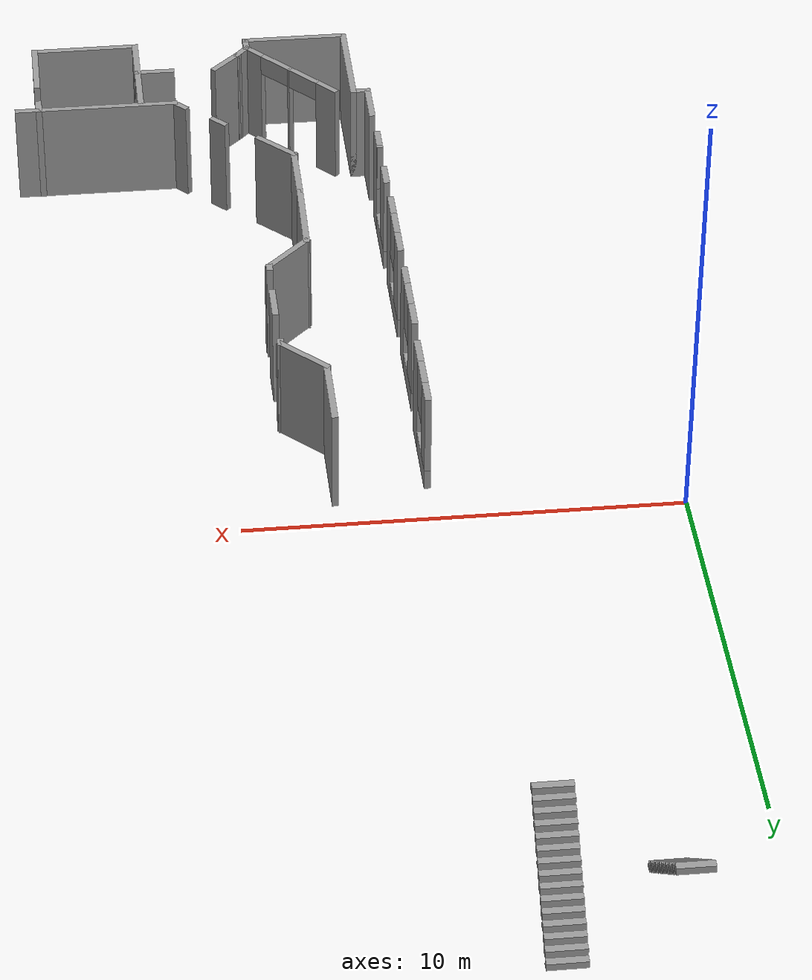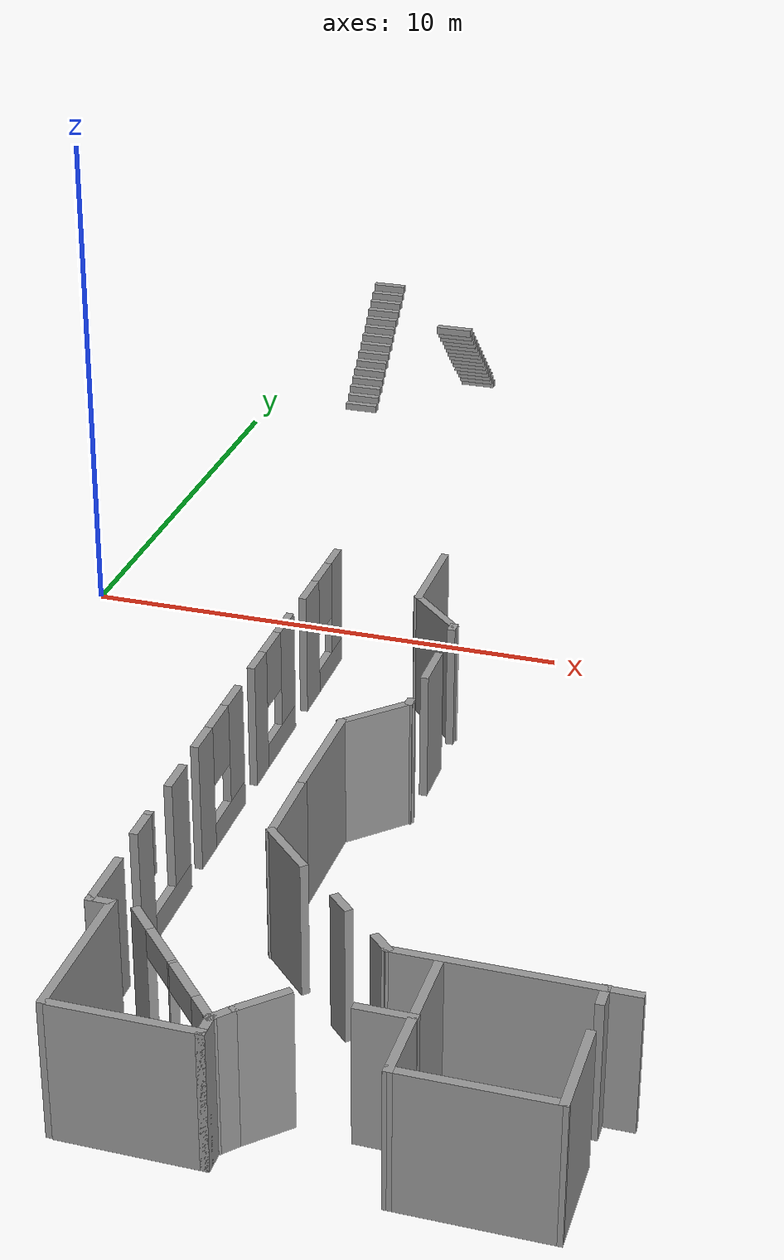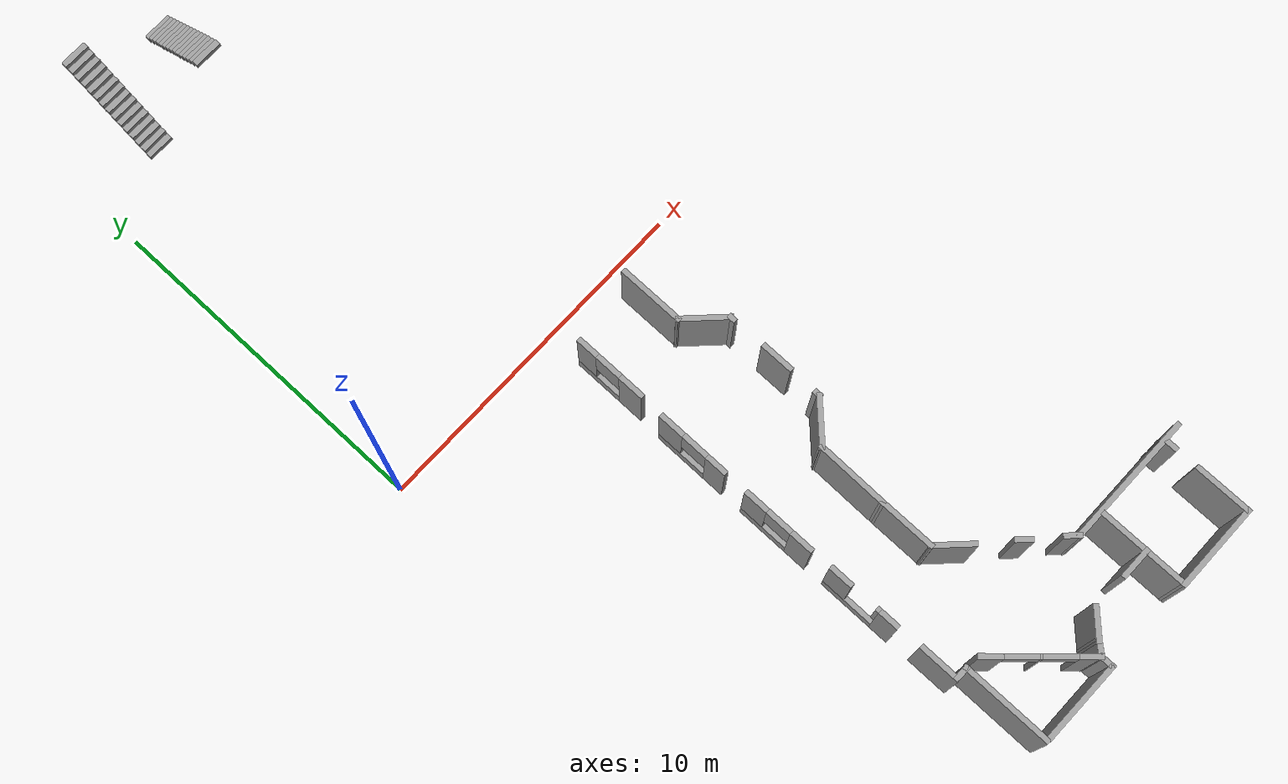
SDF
<sdf version="1.6">
 <model name="Parte_DX_(visione_alta_mappa)_CV1">
  <pose>8.09528 -0.682905 0 0 -0 0</pose>
  <link name="Stairs_0">
   <visual name="Stairs_0_Visual_0">
    <pose>-5.77033 12.1776 0.083333 0 -0 -3.14159</pose>
    <geometry><box><size>0.790783 0.17667 0.166667</size></box></geometry>
    <material>
     <script><uri>file://media/materials/scripts/gazebo.material</uri><name>Gazebo/Grey</name></script>
     <ambient>1 1 1 1</ambient>
    </material>
   </visual>
   <collision name="Stairs_0_Collision_0">
    <geometry><box><size>0.790783 0.17667 0.166667</size></box></geometry>
    <pose>-5.77033 12.1776 0.083333 0 -0 -3.14159</pose>
   </collision>
   <visual name="Stairs_0_Visual_1">
    <pose>-5.77033 12.3543 0.25 0 -0 -3.14159</pose>
    <geometry><box><size>0.790783 0.17667 0.166667</size></box></geometry>
    <material>
     <script><uri>file://media/materials/scripts/gazebo.material</uri><name>Gazebo/Grey</name></script>
     <ambient>1 1 1 1</ambient>
    </material>
   </visual>
   <collision name="Stairs_0_Collision_1">
    <geometry><box><size>0.790783 0.17667 0.166667</size></box></geometry>
    <pose>-5.77033 12.3543 0.25 0 -0 -3.14159</pose>
   </collision>
   <visual name="Stairs_0_Visual_2">
    <pose>-5.77033 12.531 0.416667 0 -0 -3.14159</pose>
    <geometry><box><size>0.790783 0.17667 0.166667</size></box></geometry>
    <material>
     <script><uri>file://media/materials/scripts/gazebo.material</uri><name>Gazebo/Grey</name></script>
     <ambient>1 1 1 1</ambient>
    </material>
   </visual>
   <collision name="Stairs_0_Collision_2">
    <geometry><box><size>0.790783 0.17667 0.166667</size></box></geometry>
    <pose>-5.77033 12.531 0.416667 0 -0 -3.14159</pose>
   </collision>
   <visual name="Stairs_0_Visual_3">
    <pose>-5.77033 12.7077 0.583333 0 -0 -3.14159</pose>
    <geometry><box><size>0.790783 0.17667 0.166667</size></box></geometry>
    <material>
     <script><uri>file://media/materials/scripts/gazebo.material</uri><name>Gazebo/Grey</name></script>
     <ambient>1 1 1 1</ambient>
    </material>
   </visual>
   <collision name="Stairs_0_Collision_3">
    <geometry><box><size>0.790783 0.17667 0.166667</size></box></geometry>
    <pose>-5.77033 12.7077 0.583333 0 -0 -3.14159</pose>
   </collision>
   <visual name="Stairs_0_Visual_4">
    <pose>-5.77033 12.8843 0.75 0 -0 -3.14159</pose>
    <geometry><box><size>0.790783 0.17667 0.166667</size></box></geometry>
    <material>
     <script><uri>file://media/materials/scripts/gazebo.material</uri><name>Gazebo/Grey</name></script>
     <ambient>1 1 1 1</ambient>
    </material>
   </visual>
   <collision name="Stairs_0_Collision_4">
    <geometry><box><size>0.790783 0.17667 0.166667</size></box></geometry>
    <pose>-5.77033 12.8843 0.75 0 -0 -3.14159</pose>
   </collision>
   <visual name="Stairs_0_Visual_5">
    <pose>-5.77033 13.061 0.916667 0 -0 -3.14159</pose>
    <geometry><box><size>0.790783 0.17667 0.166667</size></box></geometry>
    <material>
     <script><uri>file://media/materials/scripts/gazebo.material</uri><name>Gazebo/Grey</name></script>
     <ambient>1 1 1 1</ambient>
    </material>
   </visual>
   <collision name="Stairs_0_Collision_5">
    <geometry><box><size>0.790783 0.17667 0.166667</size></box></geometry>
    <pose>-5.77033 13.061 0.916667 0 -0 -3.14159</pose>
   </collision>
   <visual name="Stairs_0_Visual_6">
    <pose>-5.77033 13.2377 1.08333 0 -0 -3.14159</pose>
    <geometry><box><size>0.790783 0.17667 0.166667</size></box></geometry>
    <material>
     <script><uri>file://media/materials/scripts/gazebo.material</uri><name>Gazebo/Grey</name></script>
     <ambient>1 1 1 1</ambient>
    </material>
   </visual>
   <collision name="Stairs_0_Collision_6">
    <geometry><box><size>0.790783 0.17667 0.166667</size></box></geometry>
    <pose>-5.77033 13.2377 1.08333 0 -0 -3.14159</pose>
   </collision>
   <visual name="Stairs_0_Visual_7">
    <pose>-5.77033 13.4143 1.25 0 -0 -3.14159</pose>
    <geometry><box><size>0.790783 0.17667 0.166667</size></box></geometry>
    <material>
     <script><uri>file://media/materials/scripts/gazebo.material</uri><name>Gazebo/Grey</name></script>
     <ambient>1 1 1 1</ambient>
    </material>
   </visual>
   <collision name="Stairs_0_Collision_7">
    <geometry><box><size>0.790783 0.17667 0.166667</size></box></geometry>
    <pose>-5.77033 13.4143 1.25 0 -0 -3.14159</pose>
   </collision>
   <visual name="Stairs_0_Visual_8">
    <pose>-5.77033 13.591 1.41667 0 -0 -3.14159</pose>
    <geometry><box><size>0.790783 0.17667 0.166667</size></box></geometry>
    <material>
     <script><uri>file://media/materials/scripts/gazebo.material</uri><name>Gazebo/Grey</name></script>
     <ambient>1 1 1 1</ambient>
    </material>
   </visual>
   <collision name="Stairs_0_Collision_8">
    <geometry><box><size>0.790783 0.17667 0.166667</size></box></geometry>
    <pose>-5.77033 13.591 1.41667 0 -0 -3.14159</pose>
   </collision>
   <visual name="Stairs_0_Visual_9">
    <pose>-5.77033 13.7677 1.58333 0 -0 -3.14159</pose>
    <geometry><box><size>0.790783 0.17667 0.166667</size></box></geometry>
    <material>
     <script><uri>file://media/materials/scripts/gazebo.material</uri><name>Gazebo/Grey</name></script>
     <ambient>1 1 1 1</ambient>
    </material>
   </visual>
   <collision name="Stairs_0_Collision_9">
    <geometry><box><size>0.790783 0.17667 0.166667</size></box></geometry>
    <pose>-5.77033 13.7677 1.58333 0 -0 -3.14159</pose>
   </collision>
   <visual name="Stairs_0_Visual_10">
    <pose>-5.77033 13.9443 1.75 0 -0 -3.14159</pose>
    <geometry><box><size>0.790783 0.17667 0.166667</size></box></geometry>
    <material>
     <script><uri>file://media/materials/scripts/gazebo.material</uri><name>Gazebo/Grey</name></script>
     <ambient>1 1 1 1</ambient>
    </material>
   </visual>
   <collision name="Stairs_0_Collision_10">
    <geometry><box><size>0.790783 0.17667 0.166667</size></box></geometry>
    <pose>-5.77033 13.9443 1.75 0 -0 -3.14159</pose>
   </collision>
   <visual name="Stairs_0_Visual_11">
    <pose>-5.77033 14.121 1.91667 0 -0 -3.14159</pose>
    <geometry><box><size>0.790783 0.17667 0.166667</size></box></geometry>
    <material>
     <script><uri>file://media/materials/scripts/gazebo.material</uri><name>Gazebo/Grey</name></script>
     <ambient>1 1 1 1</ambient>
    </material>
   </visual>
   <collision name="Stairs_0_Collision_11">
    <geometry><box><size>0.790783 0.17667 0.166667</size></box></geometry>
    <pose>-5.77033 14.121 1.91667 0 -0 -3.14159</pose>
   </collision>
   <visual name="Stairs_0_Visual_12">
    <pose>-5.77033 14.2977 2.08333 0 -0 -3.14159</pose>
    <geometry><box><size>0.790783 0.17667 0.166667</size></box></geometry>
    <material>
     <script><uri>file://media/materials/scripts/gazebo.material</uri><name>Gazebo/Grey</name></script>
     <ambient>1 1 1 1</ambient>
    </material>
   </visual>
   <collision name="Stairs_0_Collision_12">
    <geometry><box><size>0.790783 0.17667 0.166667</size></box></geometry>
    <pose>-5.77033 14.2977 2.08333 0 -0 -3.14159</pose>
   </collision>
   <visual name="Stairs_0_Visual_13">
    <pose>-5.77033 14.4744 2.25 0 -0 -3.14159</pose>
    <geometry><box><size>0.790783 0.17667 0.166667</size></box></geometry>
    <material>
     <script><uri>file://media/materials/scripts/gazebo.material</uri><name>Gazebo/Grey</name></script>
     <ambient>1 1 1 1</ambient>
    </material>
   </visual>
   <collision name="Stairs_0_Collision_13">
    <geometry><box><size>0.790783 0.17667 0.166667</size></box></geometry>
    <pose>-5.77033 14.4744 2.25 0 -0 -3.14159</pose>
   </collision>
   <visual name="Stairs_0_Visual_14">
    <pose>-5.77033 14.651 2.41667 0 -0 -3.14159</pose>
    <geometry><box><size>0.790783 0.17667 0.166667</size></box></geometry>
    <material>
     <script><uri>file://media/materials/scripts/gazebo.material</uri><name>Gazebo/Grey</name></script>
     <ambient>1 1 1 1</ambient>
    </material>
   </visual>
   <collision name="Stairs_0_Collision_14">
    <geometry><box><size>0.790783 0.17667 0.166667</size></box></geometry>
    <pose>-5.77033 14.651 2.41667 0 -0 -3.14159</pose>
   </collision>
  </link>
  <link name="Stairs_1">
   <visual name="Stairs_1_Visual_0">
    <pose>-3.36416 14.6621 0.083333 0 -0 0</pose>
    <geometry><box><size>0.856163 0.179286 0.166667</size></box></geometry>
    <material>
     <script><uri>file://media/materials/scripts/gazebo.material</uri><name>Gazebo/Grey</name></script>
     <ambient>1 1 1 1</ambient>
    </material>
   </visual>
   <collision name="Stairs_1_Collision_0">
    <geometry><box><size>0.856163 0.179286 0.166667</size></box></geometry>
    <pose>-3.36416 14.6621 0.083333 0 -0 0</pose>
   </collision>
   <visual name="Stairs_1_Visual_1">
    <pose>-3.36416 14.4828 0.25 0 -0 0</pose>
    <geometry><box><size>0.856163 0.179286 0.166667</size></box></geometry>
    <material>
     <script><uri>file://media/materials/scripts/gazebo.material</uri><name>Gazebo/Grey</name></script>
     <ambient>1 1 1 1</ambient>
    </material>
   </visual>
   <collision name="Stairs_1_Collision_1">
    <geometry><box><size>0.856163 0.179286 0.166667</size></box></geometry>
    <pose>-3.36416 14.4828 0.25 0 -0 0</pose>
   </collision>
   <visual name="Stairs_1_Visual_2">
    <pose>-3.36416 14.3035 0.416667 0 -0 0</pose>
    <geometry><box><size>0.856163 0.179286 0.166667</size></box></geometry>
    <material>
     <script><uri>file://media/materials/scripts/gazebo.material</uri><name>Gazebo/Grey</name></script>
     <ambient>1 1 1 1</ambient>
    </material>
   </visual>
   <collision name="Stairs_1_Collision_2">
    <geometry><box><size>0.856163 0.179286 0.166667</size></box></geometry>
    <pose>-3.36416 14.3035 0.416667 0 -0 0</pose>
   </collision>
   <visual name="Stairs_1_Visual_3">
    <pose>-3.36416 14.1242 0.583333 0 -0 0</pose>
    <geometry><box><size>0.856163 0.179286 0.166667</size></box></geometry>
    <material>
     <script><uri>file://media/materials/scripts/gazebo.material</uri><name>Gazebo/Grey</name></script>
     <ambient>1 1 1 1</ambient>
    </material>
   </visual>
   <collision name="Stairs_1_Collision_3">
    <geometry><box><size>0.856163 0.179286 0.166667</size></box></geometry>
    <pose>-3.36416 14.1242 0.583333 0 -0 0</pose>
   </collision>
   <visual name="Stairs_1_Visual_4">
    <pose>-3.36416 13.9449 0.75 0 -0 0</pose>
    <geometry><box><size>0.856163 0.179286 0.166667</size></box></geometry>
    <material>
     <script><uri>file://media/materials/scripts/gazebo.material</uri><name>Gazebo/Grey</name></script>
     <ambient>1 1 1 1</ambient>
    </material>
   </visual>
   <collision name="Stairs_1_Collision_4">
    <geometry><box><size>0.856163 0.179286 0.166667</size></box></geometry>
    <pose>-3.36416 13.9449 0.75 0 -0 0</pose>
   </collision>
   <visual name="Stairs_1_Visual_5">
    <pose>-3.36416 13.7656 0.916667 0 -0 0</pose>
    <geometry><box><size>0.856163 0.179286 0.166667</size></box></geometry>
    <material>
     <script><uri>file://media/materials/scripts/gazebo.material</uri><name>Gazebo/Grey</name></script>
     <ambient>1 1 1 1</ambient>
    </material>
   </visual>
   <collision name="Stairs_1_Collision_5">
    <geometry><box><size>0.856163 0.179286 0.166667</size></box></geometry>
    <pose>-3.36416 13.7656 0.916667 0 -0 0</pose>
   </collision>
   <visual name="Stairs_1_Visual_6">
    <pose>-3.36416 13.5863 1.08333 0 -0 0</pose>
    <geometry><box><size>0.856163 0.179286 0.166667</size></box></geometry>
    <material>
     <script><uri>file://media/materials/scripts/gazebo.material</uri><name>Gazebo/Grey</name></script>
     <ambient>1 1 1 1</ambient>
    </material>
   </visual>
   <collision name="Stairs_1_Collision_6">
    <geometry><box><size>0.856163 0.179286 0.166667</size></box></geometry>
    <pose>-3.36416 13.5863 1.08333 0 -0 0</pose>
   </collision>
   <visual name="Stairs_1_Visual_7">
    <pose>-3.36416 13.4071 1.25 0 -0 0</pose>
    <geometry><box><size>0.856163 0.179286 0.166667</size></box></geometry>
    <material>
     <script><uri>file://media/materials/scripts/gazebo.material</uri><name>Gazebo/Grey</name></script>
     <ambient>1 1 1 1</ambient>
    </material>
   </visual>
   <collision name="Stairs_1_Collision_7">
    <geometry><box><size>0.856163 0.179286 0.166667</size></box></geometry>
    <pose>-3.36416 13.4071 1.25 0 -0 0</pose>
   </collision>
   <visual name="Stairs_1_Visual_8">
    <pose>-3.36416 13.2278 1.41667 0 -0 0</pose>
    <geometry><box><size>0.856163 0.179286 0.166667</size></box></geometry>
    <material>
     <script><uri>file://media/materials/scripts/gazebo.material</uri><name>Gazebo/Grey</name></script>
     <ambient>1 1 1 1</ambient>
    </material>
   </visual>
   <collision name="Stairs_1_Collision_8">
    <geometry><box><size>0.856163 0.179286 0.166667</size></box></geometry>
    <pose>-3.36416 13.2278 1.41667 0 -0 0</pose>
   </collision>
   <visual name="Stairs_1_Visual_9">
    <pose>-3.36416 13.0485 1.58333 0 -0 0</pose>
    <geometry><box><size>0.856163 0.179286 0.166667</size></box></geometry>
    <material>
     <script><uri>file://media/materials/scripts/gazebo.material</uri><name>Gazebo/Grey</name></script>
     <ambient>1 1 1 1</ambient>
    </material>
   </visual>
   <collision name="Stairs_1_Collision_9">
    <geometry><box><size>0.856163 0.179286 0.166667</size></box></geometry>
    <pose>-3.36416 13.0485 1.58333 0 -0 0</pose>
   </collision>
   <visual name="Stairs_1_Visual_10">
    <pose>-3.36416 12.8692 1.75 0 -0 0</pose>
    <geometry><box><size>0.856163 0.179286 0.166667</size></box></geometry>
    <material>
     <script><uri>file://media/materials/scripts/gazebo.material</uri><name>Gazebo/Grey</name></script>
     <ambient>1 1 1 1</ambient>
    </material>
   </visual>
   <collision name="Stairs_1_Collision_10">
    <geometry><box><size>0.856163 0.179286 0.166667</size></box></geometry>
    <pose>-3.36416 12.8692 1.75 0 -0 0</pose>
   </collision>
   <visual name="Stairs_1_Visual_11">
    <pose>-3.36416 12.6899 1.91667 0 -0 0</pose>
    <geometry><box><size>0.856163 0.179286 0.166667</size></box></geometry>
    <material>
     <script><uri>file://media/materials/scripts/gazebo.material</uri><name>Gazebo/Grey</name></script>
     <ambient>1 1 1 1</ambient>
    </material>
   </visual>
   <collision name="Stairs_1_Collision_11">
    <geometry><box><size>0.856163 0.179286 0.166667</size></box></geometry>
    <pose>-3.36416 12.6899 1.91667 0 -0 0</pose>
   </collision>
   <visual name="Stairs_1_Visual_12">
    <pose>-3.36416 12.5106 2.08333 0 -0 0</pose>
    <geometry><box><size>0.856163 0.179286 0.166667</size></box></geometry>
    <material>
     <script><uri>file://media/materials/scripts/gazebo.material</uri><name>Gazebo/Grey</name></script>
     <ambient>1 1 1 1</ambient>
    </material>
   </visual>
   <collision name="Stairs_1_Collision_12">
    <geometry><box><size>0.856163 0.179286 0.166667</size></box></geometry>
    <pose>-3.36416 12.5106 2.08333 0 -0 0</pose>
   </collision>
   <visual name="Stairs_1_Visual_13">
    <pose>-3.36416 12.3313 2.25 0 -0 0</pose>
    <geometry><box><size>0.856163 0.179286 0.166667</size></box></geometry>
    <material>
     <script><uri>file://media/materials/scripts/gazebo.material</uri><name>Gazebo/Grey</name></script>
     <ambient>1 1 1 1</ambient>
    </material>
   </visual>
   <collision name="Stairs_1_Collision_13">
    <geometry><box><size>0.856163 0.179286 0.166667</size></box></geometry>
    <pose>-3.36416 12.3313 2.25 0 -0 0</pose>
   </collision>
   <visual name="Stairs_1_Visual_14">
    <pose>-3.36416 12.1521 2.41667 0 -0 0</pose>
    <geometry><box><size>0.856163 0.179286 0.166667</size></box></geometry>
    <material>
     <script><uri>file://media/materials/scripts/gazebo.material</uri><name>Gazebo/Grey</name></script>
     <ambient>1 1 1 1</ambient>
    </material>
   </visual>
   <collision name="Stairs_1_Collision_14">
    <geometry><box><size>0.856163 0.179286 0.166667</size></box></geometry>
    <pose>-3.36416 12.1521 2.41667 0 -0 0</pose>
   </collision>
  </link>
  <link name="Wall_103">
   <collision name="Wall_103_Collision">
    <geometry><box><size>2 0.15 2.5</size></box></geometry>
    <pose>0 0 1.25 0 -0 0</pose>
   </collision>
   <visual name="Wall_103_Visual">
    <pose>0 0 1.25 0 -0 0</pose>
    <geometry><box><size>2 0.15 2.5</size></box></geometry>
    <material>
     <script><uri>file://media/materials/scripts/gazebo.material</uri><name>Gazebo/Grey</name></script>
     <ambient>1 1 1 1</ambient>
    </material>
   </visual>
   <pose>-0.253384 -1.01188 0 0 0 -1.5708</pose>
  </link>
  <link name="Wall_105">
   <collision name="Wall_105_Collision">
    <geometry><box><size>1.5 0.15 2.5</size></box></geometry>
    <pose>0 0 1.25 0 -0 0</pose>
   </collision>
   <visual name="Wall_105_Visual">
    <pose>0 0 1.25 0 -0 0</pose>
    <geometry><box><size>1.5 0.15 2.5</size></box></geometry>
    <material>
     <script><uri>file://media/materials/scripts/gazebo.material</uri><name>Gazebo/Grey</name></script>
     <ambient>1 1 1 1</ambient>
    </material>
   </visual>
   <pose>0.223913 -2.41418 0 0 0 -0.785398</pose>
  </link>
  <link name="Wall_106">
   <collision name="Wall_106_Collision">
    <geometry><box><size>0.25 0.15 2.5</size></box></geometry>
    <pose>0 0 1.25 0 -0 0</pose>
   </collision>
   <visual name="Wall_106_Visual">
    <pose>0 0 1.25 0 -0 0</pose>
    <geometry><box><size>0.25 0.15 2.5</size></box></geometry>
    <material>
     <script><uri>file://media/materials/scripts/gazebo.material</uri><name>Gazebo/Grey</name></script>
     <ambient>1 1 1 1</ambient>
    </material>
   </visual>
   <pose>0.70121 -2.94148 0 0 0 -1.5708</pose>
  </link>
  <link name="Wall_108">
   <collision name="Wall_108_Collision">
    <geometry><box><size>1 0.15 2.5</size></box></geometry>
    <pose>0 0 1.25 0 -0 0</pose>
   </collision>
   <visual name="Wall_108_Visual">
    <pose>0 0 1.25 0 -0 0</pose>
    <geometry><box><size>1 0.15 2.5</size></box></geometry>
    <material>
     <script><uri>file://media/materials/scripts/gazebo.material</uri><name>Gazebo/Grey</name></script>
     <ambient>1 1 1 1</ambient>
    </material>
   </visual>
   <pose>0.723822 -4.48667 0 0 0 -1.5708</pose>
  </link>
  <link name="Wall_110">
   <collision name="Wall_110_Collision">
    <geometry><box><size>0.25 0.15 2.5</size></box></geometry>
    <pose>0 0 1.25 0 -0 0</pose>
   </collision>
   <visual name="Wall_110_Visual">
    <pose>0 0 1.25 0 -0 0</pose>
    <geometry><box><size>0.25 0.15 2.5</size></box></geometry>
    <material>
     <script><uri>file://media/materials/scripts/gazebo.material</uri><name>Gazebo/Grey</name></script>
     <ambient>1 1 1 1</ambient>
    </material>
   </visual>
   <pose>0.706863 -5.87545 0 0 0 -1.5708</pose>
  </link>
  <link name="Wall_111">
   <collision name="Wall_111_Collision">
    <geometry><box><size>1.5 0.15 2.5</size></box></geometry>
    <pose>0 0 1.25 0 -0 0</pose>
   </collision>
   <visual name="Wall_111_Visual">
    <pose>0 0 1.25 0 -0 0</pose>
    <geometry><box><size>1.5 0.15 2.5</size></box></geometry>
    <material>
     <script><uri>file://media/materials/scripts/gazebo.material</uri><name>Gazebo/Grey</name></script>
     <ambient>1 1 1 1</ambient>
    </material>
   </visual>
   <pose>0.229566 -6.40275 0 0 0 -2.35619</pose>
  </link>
  <link name="Wall_113">
   <collision name="Wall_113_Collision">
    <geometry><box><size>2.21308 0.15 2.5</size></box></geometry>
    <pose>0 0 1.25 0 -0 0</pose>
   </collision>
   <visual name="Wall_113_Visual">
    <pose>0 0 1.25 0 -0 0</pose>
    <geometry><box><size>2.21308 0.15 2.5</size></box></geometry>
    <material>
     <script><uri>file://media/materials/scripts/gazebo.material</uri><name>Gazebo/Grey</name></script>
     <ambient>1 1 1 1</ambient>
    </material>
   </visual>
   <pose>-0.262289 -7.91149 0 0 0 -1.58491</pose>
  </link>
  <link name="Wall_138">
   <collision name="Wall_138_Collision">
    <geometry><box><size>0.5 0.15 2.5</size></box></geometry>
    <pose>0 0 1.25 0 -0 0</pose>
   </collision>
   <visual name="Wall_138_Visual">
    <pose>0 0 1.25 0 -0 0</pose>
    <geometry><box><size>0.5 0.15 2.5</size></box></geometry>
    <material>
     <script><uri>file://media/materials/scripts/gazebo.material</uri><name>Gazebo/Grey</name></script>
     <ambient>1 1 1 1</ambient>
    </material>
   </visual>
   <pose>5.78705 -13.262 0 0 0 -1.5708</pose>
  </link>
  <link name="Wall_140">
   <collision name="Wall_140_Collision">
    <geometry><box><size>1.75 0.15 2.5</size></box></geometry>
    <pose>0 0 1.25 0 -0 0</pose>
   </collision>
   <visual name="Wall_140_Visual">
    <pose>0 0 1.25 0 -0 0</pose>
    <geometry><box><size>1.75 0.15 2.5</size></box></geometry>
    <material>
     <script><uri>file://media/materials/scripts/gazebo.material</uri><name>Gazebo/Grey</name></script>
     <ambient>1 1 1 1</ambient>
    </material>
   </visual>
   <pose>5.79565 -14.9955 0 0 0 -1.5708</pose>
  </link>
  <link name="Wall_142">
   <collision name="Wall_142_Collision">
    <geometry><box><size>2.75 0.15 2.5</size></box></geometry>
    <pose>0 0 1.25 0 -0 0</pose>
   </collision>
   <visual name="Wall_142_Visual">
    <pose>0 0 1.25 0 -0 0</pose>
    <geometry><box><size>2.75 0.15 2.5</size></box></geometry>
    <material>
     <script><uri>file://media/materials/scripts/gazebo.material</uri><name>Gazebo/Grey</name></script>
     <ambient>1 1 1 1</ambient>
    </material>
   </visual>
   <pose>3.27651 -14.5074 0 0 0 -1.5708</pose>
  </link>
  <link name="Wall_143">
   <collision name="Wall_143_Collision">
    <geometry><box><size>2.66916 0.15 2.5</size></box></geometry>
    <pose>0 0 1.25 0 -0 0</pose>
   </collision>
   <visual name="Wall_143_Visual">
    <pose>0 0 1.25 0 -0 0</pose>
    <geometry><box><size>2.66916 0.15 2.5</size></box></geometry>
    <material>
     <script><uri>file://media/materials/scripts/gazebo.material</uri><name>Gazebo/Grey</name></script>
     <ambient>1 1 1 1</ambient>
    </material>
   </visual>
   <pose>4.53608 -15.8014 0 0 -0 0.004735</pose>
  </link>
  <link name="Wall_145">
   <collision name="Wall_145_Collision">
    <geometry><box><size>1 0.15 2.5</size></box></geometry>
    <pose>0 0 1.25 0 -0 0</pose>
   </collision>
   <visual name="Wall_145_Visual">
    <pose>0 0 1.25 0 -0 0</pose>
    <geometry><box><size>1 0.15 2.5</size></box></geometry>
    <material>
     <script><uri>file://media/materials/scripts/gazebo.material</uri><name>Gazebo/Grey</name></script>
     <ambient>1 1 1 1</ambient>
    </material>
   </visual>
   <pose>2.86011 -14.5744 0 0 -0 3.14159</pose>
  </link>
  <link name="Wall_147">
   <collision name="Wall_147_Collision">
    <geometry><box><size>1 0.15 2.5</size></box></geometry>
    <pose>0 0 1.25 0 -0 0</pose>
   </collision>
   <visual name="Wall_147_Visual">
    <pose>0 0 1.25 0 -0 0</pose>
    <geometry><box><size>1 0.15 2.5</size></box></geometry>
    <material>
     <script><uri>file://media/materials/scripts/gazebo.material</uri><name>Gazebo/Grey</name></script>
     <ambient>1 1 1 1</ambient>
    </material>
   </visual>
   <pose>1.0501 -14.8406 0 0 0 -2.35619</pose>
  </link>
  <link name="Wall_150">
   <collision name="Wall_150_Collision">
    <geometry><box><size>2.5 0.15 2.5</size></box></geometry>
    <pose>0 0 1.25 0 -0 0</pose>
   </collision>
   <visual name="Wall_150_Visual">
    <pose>0 0 1.25 0 -0 0</pose>
    <geometry><box><size>2.5 0.15 2.5</size></box></geometry>
    <material>
     <script><uri>file://media/materials/scripts/gazebo.material</uri><name>Gazebo/Grey</name></script>
     <ambient>1 1 1 1</ambient>
    </material>
   </visual>
   <pose>-0.698526 -15.7953 0 0 -0 0</pose>
  </link>
  <link name="Wall_151">
   <collision name="Wall_151_Collision">
    <geometry><box><size>0.15 0.15 2.5</size></box></geometry>
    <pose>0 0 1.25 0 -0 0</pose>
   </collision>
   <visual name="Wall_151_Visual">
    <pose>0 0 1.25 0 -0 0</pose>
    <geometry><box><size>0.15 0.15 2.5</size></box></geometry>
    <material>
     <script><uri>file://media/materials/scripts/gazebo.material</uri><name>Gazebo/Grey</name></script>
     <ambient>1 1 1 1</ambient>
    </material>
   </visual>
   <pose>0.485072 -15.7953 0 0 -0 0</pose>
  </link>
  <link name="Wall_154">
   <collision name="Wall_154_Collision">
    <geometry><box><size>0.5 0.15 2.5</size></box></geometry>
    <pose>0 0 1.25 0 -0 0</pose>
   </collision>
   <visual name="Wall_154_Visual">
    <pose>0 0 1.25 0 -0 0</pose>
    <geometry><box><size>0.5 0.15 2.5</size></box></geometry>
    <material>
     <script><uri>file://media/materials/scripts/gazebo.material</uri><name>Gazebo/Grey</name></script>
     <ambient>1 1 1 1</ambient>
    </material>
   </visual>
   <pose>0.485072 -15.6203 0 0 -0 1.5708</pose>
  </link>
  <link name="Wall_155">
   <collision name="Wall_155_Collision">
    <geometry><box><size>0.553138 0.15 2.5</size></box></geometry>
    <pose>0 0 1.25 0 -0 0</pose>
   </collision>
   <visual name="Wall_155_Visual">
    <pose>0 0 1.25 0 -0 0</pose>
    <geometry><box><size>0.553138 0.15 2.5</size></box></geometry>
    <material>
     <script><uri>file://media/materials/scripts/gazebo.material</uri><name>Gazebo/Grey</name></script>
     <ambient>1 1 1 1</ambient>
    </material>
   </visual>
   <pose>0.617326 -15.2932 0 0 -0 0.85512</pose>
  </link>
  <link name="Wall_157">
   <collision name="Wall_157_Collision">
    <geometry><box><size>2.75 0.15 2.5</size></box></geometry>
    <pose>0 0 1.25 0 -0 0</pose>
   </collision>
   <visual name="Wall_157_Visual">
    <pose>0 0 1.25 0 -0 0</pose>
    <geometry><box><size>2.75 0.15 2.5</size></box></geometry>
    <material>
     <script><uri>file://media/materials/scripts/gazebo.material</uri><name>Gazebo/Grey</name></script>
     <ambient>1 1 1 1</ambient>
    </material>
   </visual>
   <pose>-1.9853 -14.4816 0 0 0 -1.5708</pose>
  </link>
  <link name="Wall_160">
   <collision name="Wall_160_Collision">
    <geometry><box><size>0.5 0.15 2.5</size></box></geometry>
    <pose>0 0 1.25 0 -0 0</pose>
   </collision>
   <visual name="Wall_160_Visual">
    <pose>0 0 1.25 0 -0 0</pose>
    <geometry><box><size>0.5 0.15 2.5</size></box></geometry>
    <material>
     <script><uri>file://media/materials/scripts/gazebo.material</uri><name>Gazebo/Grey</name></script>
     <ambient>1 1 1 1</ambient>
    </material>
   </visual>
   <pose>-2.1603 -13.1816 0 0 -0 3.14159</pose>
  </link>
  <link name="Wall_162">
   <collision name="Wall_162_Collision">
    <geometry><box><size>1.25 0.15 2.5</size></box></geometry>
    <pose>0 0 1.25 0 -0 0</pose>
   </collision>
   <visual name="Wall_162_Visual">
    <pose>0 0 1.25 0 -0 0</pose>
    <geometry><box><size>1.25 0.15 2.5</size></box></geometry>
    <material>
     <script><uri>file://media/materials/scripts/gazebo.material</uri><name>Gazebo/Grey</name></script>
     <ambient>1 1 1 1</ambient>
    </material>
   </visual>
   <pose>-2.3378 -12.6298 0 0 0 -1.5708</pose>
  </link>
  <link name="Wall_168">
   <pose>-2.37767 -10.186 0 0 -0 1.5708</pose>
   <visual name="Wall_168_Visual_0">
    <pose>-0.818759 0 1.25 0 -0 0</pose>
    <geometry><box><size>0.612482 0.15 2.5</size></box></geometry>
    <material>
     <script><uri>file://media/materials/scripts/gazebo.material</uri><name>Gazebo/Grey</name></script>
     <ambient>1 1 1 1</ambient>
    </material>
   </visual>
   <collision name="Wall_168_Collision_0">
    <geometry><box><size>0.612482 0.15 2.5</size></box></geometry>
    <pose>-0.818759 0 1.25 0 -0 0</pose>
   </collision>
   <visual name="Wall_168_Visual_1">
    <pose>0.306241 0 0.25 0 -0 0</pose>
    <geometry><box><size>1.63752 0.15 0.5</size></box></geometry>
    <material>
     <script><uri>file://media/materials/scripts/gazebo.material</uri><name>Gazebo/Grey</name></script>
     <ambient>1 1 1 1</ambient>
    </material>
   </visual>
   <collision name="Wall_168_Collision_1">
    <geometry><box><size>1.63752 0.15 0.5</size></box></geometry>
    <pose>0.306241 0 0.25 0 -0 0</pose>
   </collision>
   <visual name="Wall_168_Visual_2">
    <pose>0.760521 0 1.5 0 -0 0</pose>
    <geometry><box><size>0.728959 0.15 2</size></box></geometry>
    <material>
     <script><uri>file://media/materials/scripts/gazebo.material</uri><name>Gazebo/Grey</name></script>
     <ambient>1 1 1 1</ambient>
    </material>
   </visual>
   <collision name="Wall_168_Collision_2">
    <geometry><box><size>0.728959 0.15 2</size></box></geometry>
    <pose>0.760521 0 1.5 0 -0 0</pose>
   </collision>
   <visual name="Wall_168_Visual_3">
    <pose>-0.458239 0 1.9 0 -0 0</pose>
    <geometry><box><size>0.10856 0.15 1.2</size></box></geometry>
    <material>
     <script><uri>file://media/materials/scripts/gazebo.material</uri><name>Gazebo/Grey</name></script>
     <ambient>1 1 1 1</ambient>
    </material>
   </visual>
   <collision name="Wall_168_Collision_3">
    <geometry><box><size>0.10856 0.15 1.2</size></box></geometry>
    <pose>-0.458239 0 1.9 0 -0 0</pose>
   </collision>
  </link>
  <link name="Wall_170">
   <pose>-2.40042 -7.35471 0 0 -0 1.5708</pose>
   <visual name="Wall_170_Visual_0">
    <pose>-0.770697 0 1.25 0 -0 0</pose>
    <geometry><box><size>0.708605 0.15 2.5</size></box></geometry>
    <material>
     <script><uri>file://media/materials/scripts/gazebo.material</uri><name>Gazebo/Grey</name></script>
     <ambient>1 1 1 1</ambient>
    </material>
   </visual>
   <collision name="Wall_170_Collision_0">
    <geometry><box><size>0.708605 0.15 2.5</size></box></geometry>
    <pose>-0.770697 0 1.25 0 -0 0</pose>
   </collision>
   <visual name="Wall_170_Visual_1">
    <pose>0.354303 0 0.25 0 -0 0</pose>
    <geometry><box><size>1.5414 0.15 0.5</size></box></geometry>
    <material>
     <script><uri>file://media/materials/scripts/gazebo.material</uri><name>Gazebo/Grey</name></script>
     <ambient>1 1 1 1</ambient>
    </material>
   </visual>
   <collision name="Wall_170_Collision_1">
    <geometry><box><size>1.5414 0.15 0.5</size></box></geometry>
    <pose>0.354303 0 0.25 0 -0 0</pose>
   </collision>
   <visual name="Wall_170_Visual_2">
    <pose>0.754303 0 1.5 0 -0 0</pose>
    <geometry><box><size>0.741395 0.15 2</size></box></geometry>
    <material>
     <script><uri>file://media/materials/scripts/gazebo.material</uri><name>Gazebo/Grey</name></script>
     <ambient>1 1 1 1</ambient>
    </material>
   </visual>
   <collision name="Wall_170_Collision_2">
    <geometry><box><size>0.741395 0.15 2</size></box></geometry>
    <pose>0.754303 0 1.5 0 -0 0</pose>
   </collision>
   <visual name="Wall_170_Visual_3">
    <pose>-0.016395 0 1.9 0 -0 0</pose>
    <geometry><box><size>0.8 0.15 1.2</size></box></geometry>
    <material>
     <script><uri>file://media/materials/scripts/gazebo.material</uri><name>Gazebo/Grey</name></script>
     <ambient>1 1 1 1</ambient>
    </material>
   </visual>
   <collision name="Wall_170_Collision_3">
    <geometry><box><size>0.8 0.15 1.2</size></box></geometry>
    <pose>-0.016395 0 1.9 0 -0 0</pose>
   </collision>
  </link>
  <link name="Wall_172">
   <pose>-2.40402 -4.44612 0 0 -0 1.5708</pose>
   <visual name="Wall_172_Visual_0">
    <pose>-0.795609 0 1.25 0 -0 0</pose>
    <geometry><box><size>0.658782 0.15 2.5</size></box></geometry>
    <material>
     <script><uri>file://media/materials/scripts/gazebo.material</uri><name>Gazebo/Grey</name></script>
     <ambient>1 1 1 1</ambient>
    </material>
   </visual>
   <collision name="Wall_172_Collision_0">
    <geometry><box><size>0.658782 0.15 2.5</size></box></geometry>
    <pose>-0.795609 0 1.25 0 -0 0</pose>
   </collision>
   <visual name="Wall_172_Visual_1">
    <pose>0.329391 0 0.25 0 -0 0</pose>
    <geometry><box><size>1.59122 0.15 0.5</size></box></geometry>
    <material>
     <script><uri>file://media/materials/scripts/gazebo.material</uri><name>Gazebo/Grey</name></script>
     <ambient>1 1 1 1</ambient>
    </material>
   </visual>
   <collision name="Wall_172_Collision_1">
    <geometry><box><size>1.59122 0.15 0.5</size></box></geometry>
    <pose>0.329391 0 0.25 0 -0 0</pose>
   </collision>
   <visual name="Wall_172_Visual_2">
    <pose>0.729391 0 1.5 0 -0 0</pose>
    <geometry><box><size>0.791218 0.15 2</size></box></geometry>
    <material>
     <script><uri>file://media/materials/scripts/gazebo.material</uri><name>Gazebo/Grey</name></script>
     <ambient>1 1 1 1</ambient>
    </material>
   </visual>
   <collision name="Wall_172_Collision_2">
    <geometry><box><size>0.791218 0.15 2</size></box></geometry>
    <pose>0.729391 0 1.5 0 -0 0</pose>
   </collision>
   <visual name="Wall_172_Visual_3">
    <pose>-0.066218 0 1.9 0 -0 0</pose>
    <geometry><box><size>0.8 0.15 1.2</size></box></geometry>
    <material>
     <script><uri>file://media/materials/scripts/gazebo.material</uri><name>Gazebo/Grey</name></script>
     <ambient>1 1 1 1</ambient>
    </material>
   </visual>
   <collision name="Wall_172_Collision_3">
    <geometry><box><size>0.8 0.15 1.2</size></box></geometry>
    <pose>-0.066218 0 1.9 0 -0 0</pose>
   </collision>
  </link>
  <link name="Wall_174">
   <pose>-2.37395 -1.55892 0 0 -0 1.5708</pose>
   <visual name="Wall_174_Visual_0">
    <pose>-0.729778 0 1.25 0 -0 0</pose>
    <geometry><box><size>0.790443 0.15 2.5</size></box></geometry>
    <material>
     <script><uri>file://media/materials/scripts/gazebo.material</uri><name>Gazebo/Grey</name></script>
     <ambient>1 1 1 1</ambient>
    </material>
   </visual>
   <collision name="Wall_174_Collision_0">
    <geometry><box><size>0.790443 0.15 2.5</size></box></geometry>
    <pose>-0.729778 0 1.25 0 -0 0</pose>
   </collision>
   <visual name="Wall_174_Visual_1">
    <pose>0.395222 0 0.25 0 -0 0</pose>
    <geometry><box><size>1.45956 0.15 0.5</size></box></geometry>
    <material>
     <script><uri>file://media/materials/scripts/gazebo.material</uri><name>Gazebo/Grey</name></script>
     <ambient>1 1 1 1</ambient>
    </material>
   </visual>
   <collision name="Wall_174_Collision_1">
    <geometry><box><size>1.45956 0.15 0.5</size></box></geometry>
    <pose>0.395222 0 0.25 0 -0 0</pose>
   </collision>
   <visual name="Wall_174_Visual_2">
    <pose>0.795222 0 1.5 0 -0 0</pose>
    <geometry><box><size>0.659557 0.15 2</size></box></geometry>
    <material>
     <script><uri>file://media/materials/scripts/gazebo.material</uri><name>Gazebo/Grey</name></script>
     <ambient>1 1 1 1</ambient>
    </material>
   </visual>
   <collision name="Wall_174_Collision_2">
    <geometry><box><size>0.659557 0.15 2</size></box></geometry>
    <pose>0.795222 0 1.5 0 -0 0</pose>
   </collision>
   <visual name="Wall_174_Visual_3">
    <pose>0.065443 0 1.9 0 -0 0</pose>
    <geometry><box><size>0.8 0.15 1.2</size></box></geometry>
    <material>
     <script><uri>file://media/materials/scripts/gazebo.material</uri><name>Gazebo/Grey</name></script>
     <ambient>1 1 1 1</ambient>
    </material>
   </visual>
   <collision name="Wall_174_Collision_3">
    <geometry><box><size>0.8 0.15 1.2</size></box></geometry>
    <pose>0.065443 0 1.9 0 -0 0</pose>
   </collision>
  </link>
  <link name="Wall_196">
   <collision name="Wall_196_Collision">
    <geometry><box><size>1.25 0.15 2.5</size></box></geometry>
    <pose>0 0 1.25 0 -0 0</pose>
   </collision>
   <visual name="Wall_196_Visual">
    <pose>0 0 1.25 0 -0 0</pose>
    <geometry><box><size>1.25 0.15 2.5</size></box></geometry>
    <material>
     <script><uri>file://media/materials/scripts/gazebo.material</uri><name>Gazebo/Grey</name></script>
     <ambient>1 1 1 1</ambient>
    </material>
   </visual>
   <pose>0.112061 -10.9318 0 0 0 -0.785398</pose>
  </link>
  <link name="Wall_198">
   <collision name="Wall_198_Collision">
    <geometry><box><size>0.5 0.15 2.5</size></box></geometry>
    <pose>0 0 1.25 0 -0 0</pose>
   </collision>
   <visual name="Wall_198_Visual">
    <pose>0 0 1.25 0 -0 0</pose>
    <geometry><box><size>0.5 0.15 2.5</size></box></geometry>
    <material>
     <script><uri>file://media/materials/scripts/gazebo.material</uri><name>Gazebo/Grey</name></script>
     <ambient>1 1 1 1</ambient>
    </material>
   </visual>
   <pose>1.42128 -12.1501 0 0 0 -0.785398</pose>
  </link>
  <link name="Wall_200">
   <pose>-0.523632 -14.347 0 0 0 -0.827894</pose>
   <visual name="Wall_200_Visual_0">
    <pose>-1.24374 0 1.25 0 -0 0</pose>
    <geometry><box><size>0.644953 0.15 2.5</size></box></geometry>
    <material>
     <script><uri>file://media/materials/scripts/gazebo.material</uri><name>Gazebo/Grey</name></script>
     <ambient>1 1 1 1</ambient>
    </material>
   </visual>
   <collision name="Wall_200_Collision_0">
    <geometry><box><size>0.644953 0.15 2.5</size></box></geometry>
    <pose>-1.24374 0 1.25 0 -0 0</pose>
   </collision>
   <visual name="Wall_200_Visual_1">
    <pose>0.007769 0 1.25 0 -0 0</pose>
    <geometry><box><size>0.058074 0.15 2.5</size></box></geometry>
    <material>
     <script><uri>file://media/materials/scripts/gazebo.material</uri><name>Gazebo/Grey</name></script>
     <ambient>1 1 1 1</ambient>
    </material>
   </visual>
   <collision name="Wall_200_Collision_1">
    <geometry><box><size>0.058074 0.15 2.5</size></box></geometry>
    <pose>0.007769 0 1.25 0 -0 0</pose>
   </collision>
   <visual name="Wall_200_Visual_2">
    <pose>1.25151 0 1.25 0 -0 0</pose>
    <geometry><box><size>0.629415 0.15 2.5</size></box></geometry>
    <material>
     <script><uri>file://media/materials/scripts/gazebo.material</uri><name>Gazebo/Grey</name></script>
     <ambient>1 1 1 1</ambient>
    </material>
   </visual>
   <collision name="Wall_200_Collision_2">
    <geometry><box><size>0.629415 0.15 2.5</size></box></geometry>
    <pose>1.25151 0 1.25 0 -0 0</pose>
   </collision>
   <visual name="Wall_200_Visual_3">
    <pose>-0.471267 0 2.25 0 -0 0</pose>
    <geometry><box><size>0.9 0.15 0.5</size></box></geometry>
    <material>
     <script><uri>file://media/materials/scripts/gazebo.material</uri><name>Gazebo/Grey</name></script>
     <ambient>1 1 1 1</ambient>
    </material>
   </visual>
   <collision name="Wall_200_Collision_3">
    <geometry><box><size>0.9 0.15 0.5</size></box></geometry>
    <pose>-0.471267 0 2.25 0 -0 0</pose>
   </collision>
   <visual name="Wall_200_Visual_4">
    <pose>0.486806 0 2.25 0 -0 0</pose>
    <geometry><box><size>0.9 0.15 0.5</size></box></geometry>
    <material>
     <script><uri>file://media/materials/scripts/gazebo.material</uri><name>Gazebo/Grey</name></script>
     <ambient>1 1 1 1</ambient>
    </material>
   </visual>
   <collision name="Wall_200_Collision_4">
    <geometry><box><size>0.9 0.15 0.5</size></box></geometry>
    <pose>0.486806 0 2.25 0 -0 0</pose>
   </collision>
  </link>
  <link name="Wall_71">
   <collision name="Wall_71_Collision">
    <geometry><box><size>4 0.15 2.5</size></box></geometry>
    <pose>0 0 1.25 0 -0 0</pose>
   </collision>
   <visual name="Wall_71_Visual">
    <pose>0 0 1.25 0 -0 0</pose>
    <geometry><box><size>4 0.15 2.5</size></box></geometry>
    <material>
     <script><uri>file://media/materials/scripts/gazebo.material</uri><name>Gazebo/Grey</name></script>
     <ambient>1 1 1 1</ambient>
    </material>
   </visual>
   <pose>4.37477 -13.1006 0 0 -0 0</pose>
  </link>
  <link name="Wall_75">
   <collision name="Wall_75_Collision">
    <geometry><box><size>0.5 0.15 2.5</size></box></geometry>
    <pose>0 0 1.25 0 -0 0</pose>
   </collision>
   <visual name="Wall_75_Visual">
    <pose>0 0 1.25 0 -0 0</pose>
    <geometry><box><size>0.5 0.15 2.5</size></box></geometry>
    <material>
     <script><uri>file://media/materials/scripts/gazebo.material</uri><name>Gazebo/Grey</name></script>
     <ambient>1 1 1 1</ambient>
    </material>
   </visual>
   <pose>2.32603 -12.9769 0 0 -0 2.35619</pose>
  </link>
  <link name="Wall_79">
   <collision name="Wall_79_Collision">
    <geometry><box><size>1.75 0.15 2.5</size></box></geometry>
    <pose>0 0 1.25 0 -0 0</pose>
   </collision>
   <visual name="Wall_79_Visual">
    <pose>0 0 1.25 0 -0 0</pose>
    <geometry><box><size>1.75 0.15 2.5</size></box></geometry>
    <material>
     <script><uri>file://media/materials/scripts/gazebo.material</uri><name>Gazebo/Grey</name></script>
     <ambient>1 1 1 1</ambient>
    </material>
   </visual>
   <pose>-0.276848 -9.74292 0 0 0 -1.5708</pose>
  </link>
  <static>1</static>
 </model>
</sdf>
